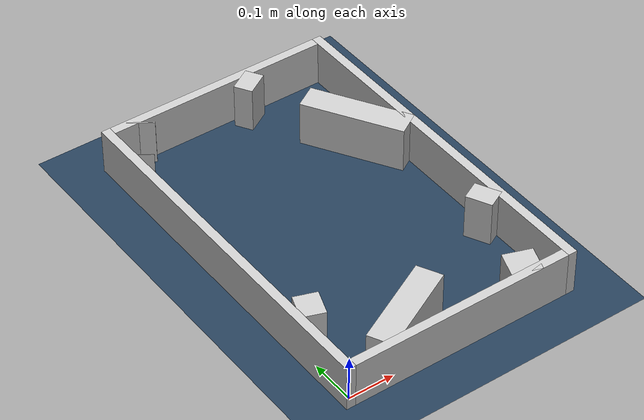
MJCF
<?xml version="1.0" ?>
<mujoco model="generated_real_template">
  <compiler angle="degree"/>
  <option timestep="0.002" integrator="implicitfast" iterations="100" cone="elliptic"/>
  <default>
    <geom density="1"/>
  </default>
  <asset>
    <texture builtin="gradient" height="3072" rgb1="0.3 0.5 0.7" rgb2="0 0 0" type="skybox" width="512"/>
    <texture builtin="checker" height="300" mark="edge" markrgb="0.8 0.8 0.8" name="groundplane" rgb1="0.2 0.3 0.4" rgb2="0.1 0.2 0.3" type="2d" width="300"/>
    <material name="groundplane" reflectance="0.2" texrepeat="5 5" texture="groundplane" texuniform="true"/>
  </asset>
  <worldbody>
    <light dir="0 0 -1" directional="true" pos="0 0 1.5"/>
    <geom name="floor" type="plane" condim="4" friction="0.5 0.005 0.001" material="groundplane" size="0 0 0.05"/>
    <body name="walls">
      <geom name="wall_boundary_left" type="box" condim="4" friction="1.0 0.005 0.0001" rgba="0.8 0.8 0.8 1" pos="-0.010000 0.387500 0.050000" euler="0 0 0.000000" size="0.010000 0.407500 0.050000"/>
      <geom name="wall_boundary_right" type="box" condim="4" friction="1.0 0.005 0.0001" rgba="0.8 0.8 0.8 1" pos="0.500000 0.387500 0.050000" euler="0 0 0.000000" size="0.010000 0.407500 0.050000"/>
      <geom name="wall_boundary_bottom" type="box" condim="4" friction="1.0 0.005 0.0001" rgba="0.8 0.8 0.8 1" pos="0.245000 -0.010000 0.050000" euler="0 0 0.000000" size="0.245000 0.010000 0.050000"/>
      <geom name="wall_boundary_top" type="box" condim="4" friction="1.0 0.005 0.0001" rgba="0.8 0.8 0.8 1" pos="0.245000 0.785000 0.050000" euler="0 0 0.000000" size="0.245000 0.010000 0.050000"/>
      <geom name="wall_inner_1_1" type="box" condim="4" friction="1.0 0.005 0.0001" rgba="0.8 0.8 0.8 1" pos="0.427796 0.556108 0.050000" euler="0 0 121.141490" size="0.111786 0.028500 0.050000"/>
      <geom name="wall_inner_1_2" type="box" condim="4" friction="1.0 0.005 0.0001" rgba="0.8 0.8 0.8 1" pos="0.306021 0.757646 0.050000" euler="0 0 121.141490" size="0.020276 0.028500 0.050000"/>
      <geom name="wall_inner_2_1" type="box" condim="4" friction="1.0 0.005 0.0001" rgba="0.8 0.8 0.8 1" pos="0.058467 0.773865 0.050000" euler="0 0 -123.798407" size="0.001366 0.028500 0.050000"/>
      <geom name="wall_inner_2_2" type="box" condim="4" friction="1.0 0.005 0.0001" rgba="0.8 0.8 0.8 1" pos="0.003967 0.692449 0.050000" euler="0 0 -123.798407" size="0.000508 0.028500 0.050000"/>
      <geom name="wall_inner_3_1" type="box" condim="4" friction="1.0 0.005 0.0001" rgba="0.8 0.8 0.8 1" pos="0.470293 0.207539 0.050000" euler="0 0 -153.074460" size="0.022103 0.028500 0.050000"/>
      <geom name="wall_inner_3_2" type="box" condim="4" friction="1.0 0.005 0.0001" rgba="0.8 0.8 0.8 1" pos="0.164724 0.052344 0.050000" euler="0 0 -153.074460" size="0.103641 0.028500 0.050000"/>
      <geom name="wall_inner_4_1" type="box" condim="4" friction="1.0 0.005 0.0001" rgba="0.8 0.8 0.8 1" pos="0.409357 0.017416 0.050000" euler="0 0 160.384049" size="0.031481 0.028500 0.050000"/>
      <geom name="wall_inner_4_2" type="box" condim="4" friction="1.0 0.005 0.0001" rgba="0.8 0.8 0.8 1" pos="0.023972 0.154766 0.050000" euler="0 0 160.384049" size="0.025449 0.028500 0.050000"/>
    </body>
  </worldbody>
</mujoco>
